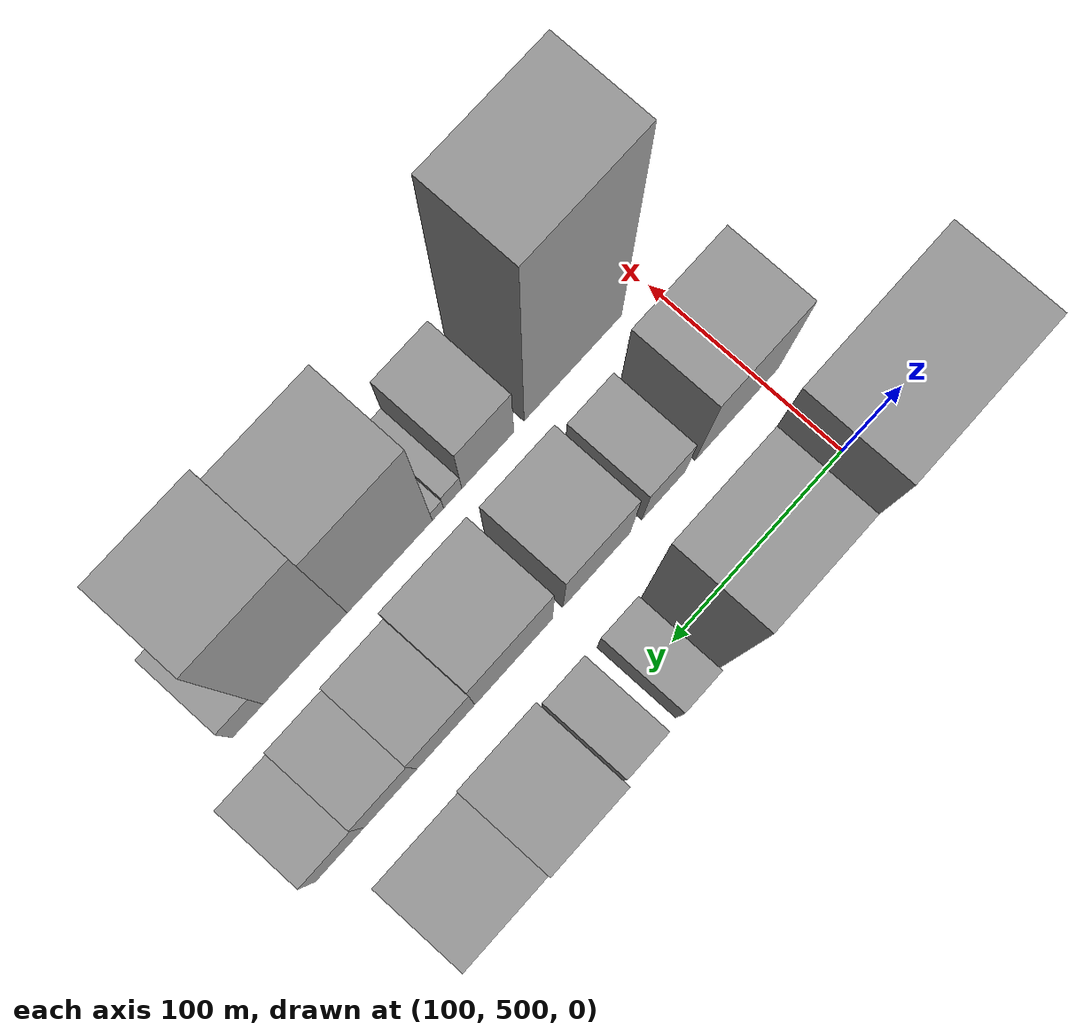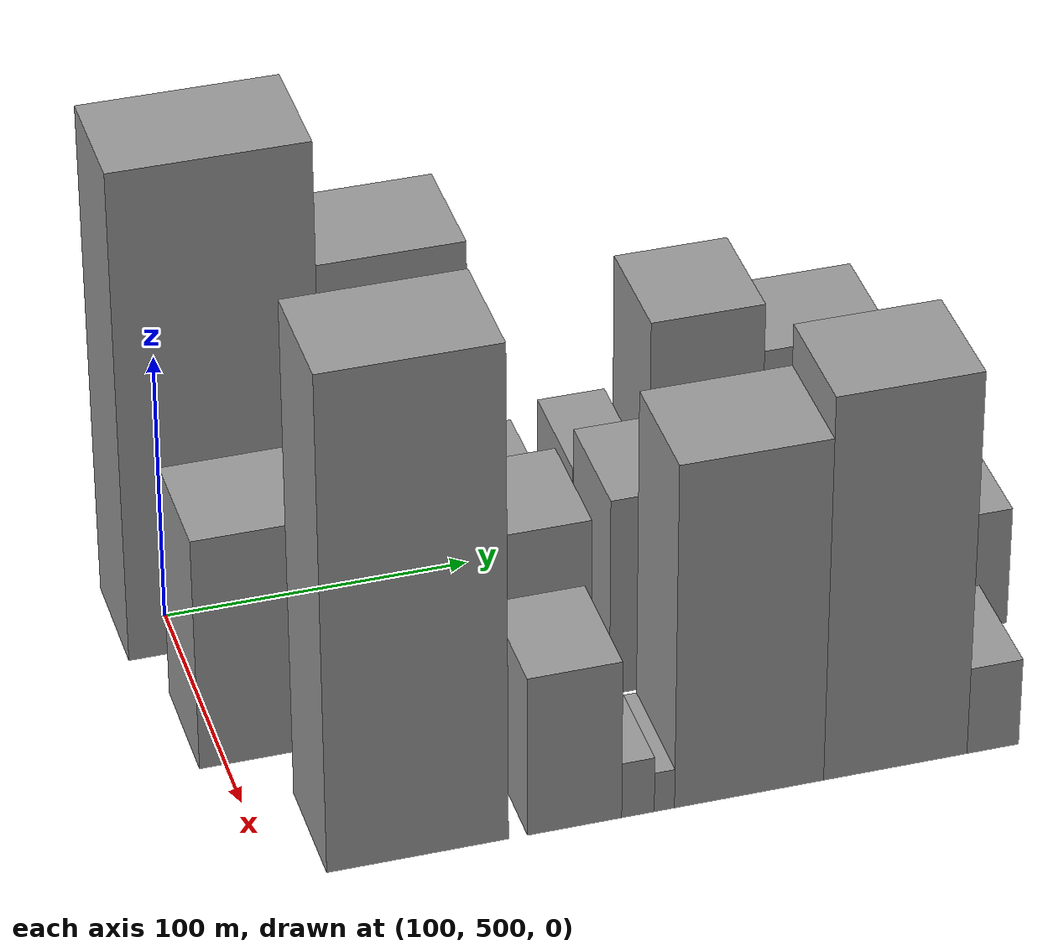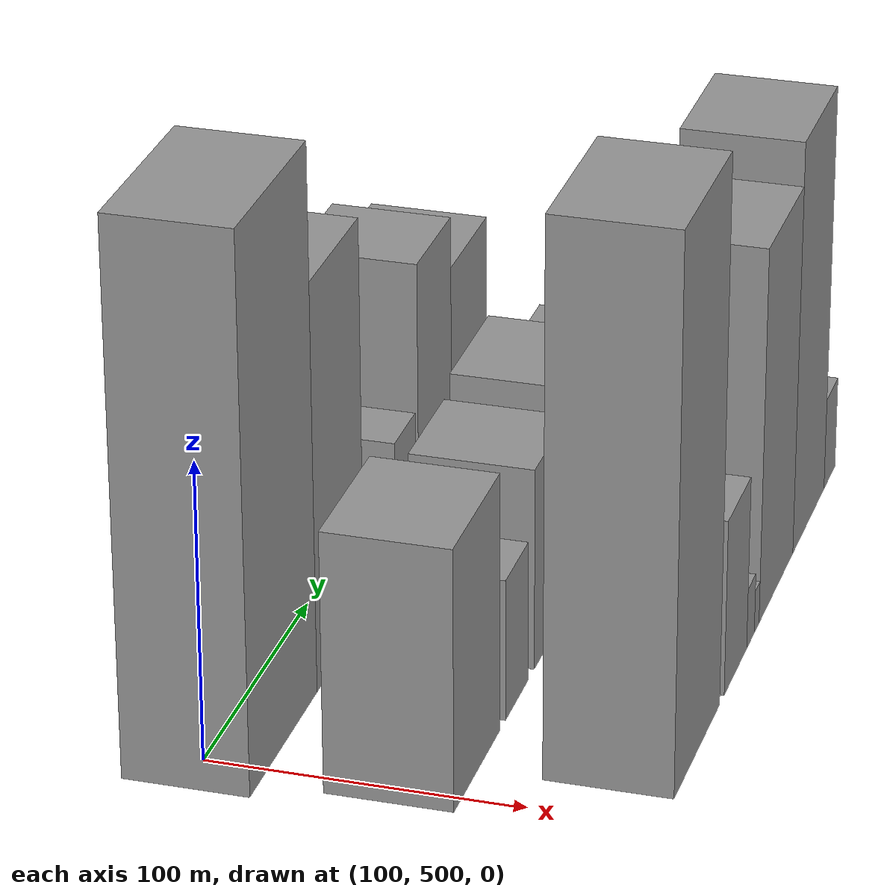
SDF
<sdf version="1.6">
 <world name="default">
  <model name="building_41">
   <static>1</static>
   <pose>100.0000 515.5164 0 0.000000 0.000000 0.000000</pose>
   <link name="link">
    <pose>0 0 91.50 0 0 0</pose>
    <collision name="collision"><geometry><box><size>40.0000 64.3114 183.0000</size></box></geometry></collision>
    <visual name="visual">
     <cast_shadows>0</cast_shadows>
     <geometry><box><size>40.0000 64.3114 183.0000</size></box></geometry>
     <material>
      <script>
       <uri>model://grey_wall/materials/scripts</uri>
       <uri>model://grey_wall/materials/textures</uri>
       <name>vrc/grey_wall</name>
      </script>
     </material>
    </visual>
   </link>
  </model>
  <model name="building_42">
   <static>1</static>
   <pose>100.0000 571.6295 0 0.000000 0.000000 0.000000</pose>
   <link name="link">
    <pose>0 0 69.00 0 0 0</pose>
    <collision name="collision"><geometry><box><size>40.0000 47.9148 138.0000</size></box></geometry></collision>
    <visual name="visual">
     <cast_shadows>0</cast_shadows>
     <geometry><box><size>40.0000 47.9148 138.0000</size></box></geometry>
     <material>
      <script>
       <uri>model://grey_wall/materials/scripts</uri>
       <uri>model://grey_wall/materials/textures</uri>
       <name>vrc/grey_wall</name>
      </script>
     </material>
    </visual>
   </link>
  </model>
  <model name="building_43">
   <static>1</static>
   <pose>100.0000 610.7776 0 0.000000 0.000000 0.000000</pose>
   <link name="link">
    <pose>0 0 19.50 0 0 0</pose>
    <collision name="collision"><geometry><box><size>40.0000 20.3813 39.0000</size></box></geometry></collision>
    <visual name="visual">
     <cast_shadows>0</cast_shadows>
     <geometry><box><size>40.0000 20.3813 39.0000</size></box></geometry>
     <material>
      <script>
       <uri>model://grey_wall/materials/scripts</uri>
       <uri>model://grey_wall/materials/textures</uri>
       <name>vrc/grey_wall</name>
      </script>
     </material>
    </visual>
   </link>
  </model>
  <model name="building_44">
   <static>1</static>
   <pose>100.0000 641.2675 0 0.000000 0.000000 0.000000</pose>
   <link name="link">
    <pose>0 0 22.50 0 0 0</pose>
    <collision name="collision"><geometry><box><size>40.0000 22.5986 45.0000</size></box></geometry></collision>
    <visual name="visual">
     <cast_shadows>0</cast_shadows>
     <geometry><box><size>40.0000 22.5986 45.0000</size></box></geometry>
     <material>
      <script>
       <uri>model://grey_wall/materials/scripts</uri>
       <uri>model://grey_wall/materials/textures</uri>
       <name>vrc/grey_wall</name>
      </script>
     </material>
    </visual>
   </link>
  </model>
  <model name="building_45">
   <static>1</static>
   <pose>100.0000 674.5001 0 0.000000 0.000000 0.000000</pose>
   <link name="link">
    <pose>0 0 48.00 0 0 0</pose>
    <collision name="collision"><geometry><box><size>40.0000 37.8667 96.0000</size></box></geometry></collision>
    <visual name="visual">
     <cast_shadows>0</cast_shadows>
     <geometry><box><size>40.0000 37.8667 96.0000</size></box></geometry>
     <material>
      <script>
       <uri>model://grey_wall/materials/scripts</uri>
       <uri>model://grey_wall/materials/textures</uri>
       <name>vrc/grey_wall</name>
      </script>
     </material>
    </visual>
   </link>
  </model>
  <model name="building_46">
   <static>1</static>
   <pose>100.0000 714.5114 0 0.000000 0.000000 0.000000</pose>
   <link name="link">
    <pose>0 0 39.00 0 0 0</pose>
    <collision name="collision"><geometry><box><size>40.0000 42.1558 78.0000</size></box></geometry></collision>
    <visual name="visual">
     <cast_shadows>0</cast_shadows>
     <geometry><box><size>40.0000 42.1558 78.0000</size></box></geometry>
     <material>
      <script>
       <uri>model://grey_wall/materials/scripts</uri>
       <uri>model://grey_wall/materials/textures</uri>
       <name>vrc/grey_wall</name>
      </script>
     </material>
    </visual>
   </link>
  </model>
  <model name="building_100">
   <static>1</static>
   <pose>160.0000 516.3915 0 0.000000 0.000000 0.000000</pose>
   <link name="link">
    <pose>0 0 43.50 0 0 0</pose>
    <collision name="collision"><geometry><box><size>40.0000 49.3634 87.0000</size></box></geometry></collision>
    <visual name="visual">
     <cast_shadows>0</cast_shadows>
     <geometry><box><size>40.0000 49.3634 87.0000</size></box></geometry>
     <material>
      <script>
       <uri>model://grey_wall/materials/scripts</uri>
       <uri>model://grey_wall/materials/textures</uri>
       <name>vrc/grey_wall</name>
      </script>
     </material>
    </visual>
   </link>
  </model>
  <model name="building_101">
   <static>1</static>
   <pose>160.0000 559.7722 0 0.000000 0.000000 0.000000</pose>
   <link name="link">
    <pose>0 0 24.00 0 0 0</pose>
    <collision name="collision"><geometry><box><size>40.0000 25.3980 48.0000</size></box></geometry></collision>
    <visual name="visual">
     <cast_shadows>0</cast_shadows>
     <geometry><box><size>40.0000 25.3980 48.0000</size></box></geometry>
     <material>
      <script>
       <uri>model://grey_wall/materials/scripts</uri>
       <uri>model://grey_wall/materials/textures</uri>
       <name>vrc/grey_wall</name>
      </script>
     </material>
    </visual>
   </link>
  </model>
  <model name="building_102">
   <static>1</static>
   <pose>160.0000 598.8418 0 0.000000 0.000000 0.000000</pose>
   <link name="link">
    <pose>0 0 34.50 0 0 0</pose>
    <collision name="collision"><geometry><box><size>40.0000 38.7412 69.0000</size></box></geometry></collision>
    <visual name="visual">
     <cast_shadows>0</cast_shadows>
     <geometry><box><size>40.0000 38.7412 69.0000</size></box></geometry>
     <material>
      <script>
       <uri>model://grey_wall/materials/scripts</uri>
       <uri>model://grey_wall/materials/textures</uri>
       <name>vrc/grey_wall</name>
      </script>
     </material>
    </visual>
   </link>
  </model>
  <model name="building_103">
   <static>1</static>
   <pose>160.0000 646.2198 0 0.000000 0.000000 0.000000</pose>
   <link name="link">
    <pose>0 0 37.50 0 0 0</pose>
    <collision name="collision"><geometry><box><size>40.0000 44.0148 75.0000</size></box></geometry></collision>
    <visual name="visual">
     <cast_shadows>0</cast_shadows>
     <geometry><box><size>40.0000 44.0148 75.0000</size></box></geometry>
     <material>
      <script>
       <uri>model://grey_wall/materials/scripts</uri>
       <uri>model://grey_wall/materials/textures</uri>
       <name>vrc/grey_wall</name>
      </script>
     </material>
    </visual>
   </link>
  </model>
  <model name="building_104">
   <static>1</static>
   <pose>160.0000 684.3957 0 0.000000 0.000000 0.000000</pose>
   <link name="link">
    <pose>0 0 28.50 0 0 0</pose>
    <collision name="collision"><geometry><box><size>40.0000 32.3370 57.0000</size></box></geometry></collision>
    <visual name="visual">
     <cast_shadows>0</cast_shadows>
     <geometry><box><size>40.0000 32.3370 57.0000</size></box></geometry>
     <material>
      <script>
       <uri>model://grey_wall/materials/scripts</uri>
       <uri>model://grey_wall/materials/textures</uri>
       <name>vrc/grey_wall</name>
      </script>
     </material>
    </visual>
   </link>
  </model>
  <model name="building_105">
   <static>1</static>
   <pose>160.0000 715.2752 0 0.000000 0.000000 0.000000</pose>
   <link name="link">
    <pose>0 0 25.50 0 0 0</pose>
    <collision name="collision"><geometry><box><size>40.0000 29.4220 51.0000</size></box></geometry></collision>
    <visual name="visual">
     <cast_shadows>0</cast_shadows>
     <geometry><box><size>40.0000 29.4220 51.0000</size></box></geometry>
     <material>
      <script>
       <uri>model://grey_wall/materials/scripts</uri>
       <uri>model://grey_wall/materials/textures</uri>
       <name>vrc/grey_wall</name>
      </script>
     </material>
    </visual>
   </link>
  </model>
  <model name="building_106">
   <static>1</static>
   <pose>160.0000 743.3657 0 0.000000 0.000000 0.000000</pose>
   <link name="link">
    <pose>0 0 22.50 0 0 0</pose>
    <collision name="collision"><geometry><box><size>40.0000 26.7590 45.0000</size></box></geometry></collision>
    <visual name="visual">
     <cast_shadows>0</cast_shadows>
     <geometry><box><size>40.0000 26.7590 45.0000</size></box></geometry>
     <material>
      <script>
       <uri>model://grey_wall/materials/scripts</uri>
       <uri>model://grey_wall/materials/textures</uri>
       <name>vrc/grey_wall</name>
      </script>
     </material>
    </visual>
   </link>
  </model>
  <model name="building_153">
   <static>1</static>
   <pose>220.0000 545.2175 0 0.000000 0.000000 0.000000</pose>
   <link name="link">
    <pose>0 0 91.50 0 0 0</pose>
    <collision name="collision"><geometry><box><size>40.0000 57.2452 183.0000</size></box></geometry></collision>
    <visual name="visual">
     <cast_shadows>0</cast_shadows>
     <geometry><box><size>40.0000 57.2452 183.0000</size></box></geometry>
     <material>
      <script>
       <uri>model://grey_wall/materials/scripts</uri>
       <uri>model://grey_wall/materials/textures</uri>
       <name>vrc/grey_wall</name>
      </script>
     </material>
    </visual>
   </link>
  </model>
  <model name="building_154">
   <static>1</static>
   <pose>220.0000 594.8550 0 0.000000 0.000000 0.000000</pose>
   <link name="link">
    <pose>0 0 30.00 0 0 0</pose>
    <collision name="collision"><geometry><box><size>40.0000 30.0299 60.0000</size></box></geometry></collision>
    <visual name="visual">
     <cast_shadows>0</cast_shadows>
     <geometry><box><size>40.0000 30.0299 60.0000</size></box></geometry>
     <material>
      <script>
       <uri>model://grey_wall/materials/scripts</uri>
       <uri>model://grey_wall/materials/textures</uri>
       <name>vrc/grey_wall</name>
      </script>
     </material>
    </visual>
   </link>
  </model>
  <model name="building_155">
   <static>1</static>
   <pose>220.0000 615.0858 0 0.000000 0.000000 0.000000</pose>
   <link name="link">
    <pose>0 0 10.50 0 0 0</pose>
    <collision name="collision"><geometry><box><size>40.0000 10.4318 21.0000</size></box></geometry></collision>
    <visual name="visual">
     <cast_shadows>0</cast_shadows>
     <geometry><box><size>40.0000 10.4318 21.0000</size></box></geometry>
     <material>
      <script>
       <uri>model://grey_wall/materials/scripts</uri>
       <uri>model://grey_wall/materials/textures</uri>
       <name>vrc/grey_wall</name>
      </script>
     </material>
    </visual>
   </link>
  </model>
  <model name="building_156">
   <static>1</static>
   <pose>220.0000 623.5421 0 0.000000 0.000000 0.000000</pose>
   <link name="link">
    <pose>0 0 7.50 0 0 0</pose>
    <collision name="collision"><geometry><box><size>40.0000 6.4809 15.0000</size></box></geometry></collision>
    <visual name="visual">
     <cast_shadows>0</cast_shadows>
     <geometry><box><size>40.0000 6.4809 15.0000</size></box></geometry>
     <material>
      <script>
       <uri>model://grey_wall/materials/scripts</uri>
       <uri>model://grey_wall/materials/textures</uri>
       <name>vrc/grey_wall</name>
      </script>
     </material>
    </visual>
   </link>
  </model>
  <model name="building_157">
   <static>1</static>
   <pose>220.0000 650.8778 0 0.000000 0.000000 0.000000</pose>
   <link name="link">
    <pose>0 0 64.50 0 0 0</pose>
    <collision name="collision"><geometry><box><size>40.0000 48.1904 129.0000</size></box></geometry></collision>
    <visual name="visual">
     <cast_shadows>0</cast_shadows>
     <geometry><box><size>40.0000 48.1904 129.0000</size></box></geometry>
     <material>
      <script>
       <uri>model://grey_wall/materials/scripts</uri>
       <uri>model://grey_wall/materials/textures</uri>
       <name>vrc/grey_wall</name>
      </script>
     </material>
    </visual>
   </link>
  </model>
  <model name="building_158">
   <static>1</static>
   <pose>220.0000 698.4132 0 0.000000 0.000000 0.000000</pose>
   <link name="link">
    <pose>0 0 72.00 0 0 0</pose>
    <collision name="collision"><geometry><box><size>40.0000 46.8804 144.0000</size></box></geometry></collision>
    <visual name="visual">
     <cast_shadows>0</cast_shadows>
     <geometry><box><size>40.0000 46.8804 144.0000</size></box></geometry>
     <material>
      <script>
       <uri>model://grey_wall/materials/scripts</uri>
       <uri>model://grey_wall/materials/textures</uri>
       <name>vrc/grey_wall</name>
      </script>
     </material>
    </visual>
   </link>
  </model>
  <model name="building_159">
   <static>1</static>
   <pose>220.0000 730.3492 0 0.000000 0.000000 0.000000</pose>
   <link name="link">
    <pose>0 0 16.50 0 0 0</pose>
    <collision name="collision"><geometry><box><size>40.0000 16.9916 33.0000</size></box></geometry></collision>
    <visual name="visual">
     <cast_shadows>0</cast_shadows>
     <geometry><box><size>40.0000 16.9916 33.0000</size></box></geometry>
     <material>
      <script>
       <uri>model://grey_wall/materials/scripts</uri>
       <uri>model://grey_wall/materials/textures</uri>
       <name>vrc/grey_wall</name>
      </script>
     </material>
    </visual>
   </link>
  </model>
 </world>
</sdf>
